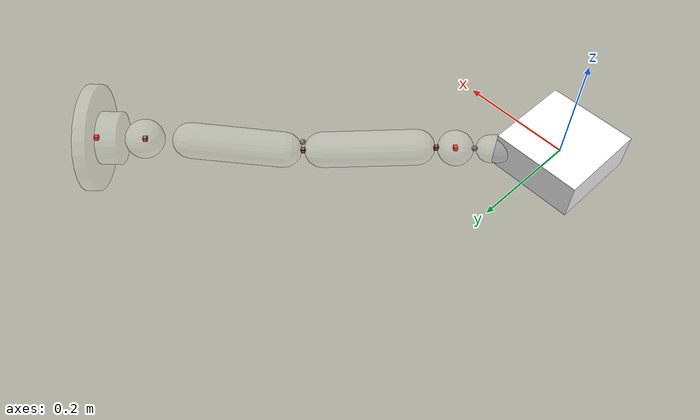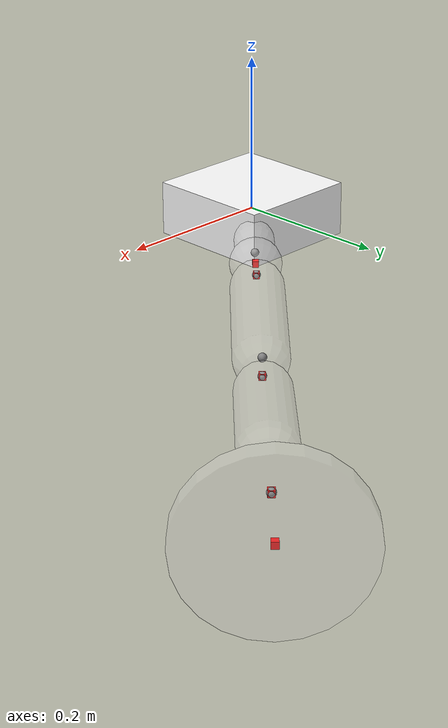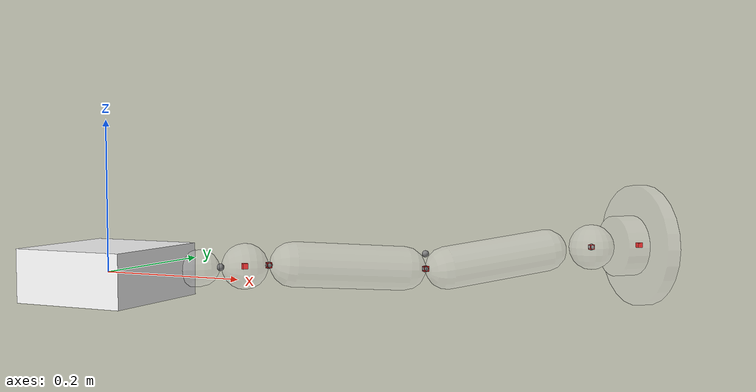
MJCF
<mujoco>
    <worldbody>
        <geom name="ROMERIN" type="box" size="0.08 0.0825 0.035" rgba="1 1 1 1"/>
        <body name="THOR" pos="0.08 0.0825 0" euler="0 0 45.8814">
            <geom name="colision_b0" type="capsule" size="0.025 0.008" euler="0 90 0" rgba="1 1 1 0.2"/>
            <body name="link_1" pos="0.069 0 0" >
                <inertial pos="0 0 0" mass="0.212" diaginertia="1 1 1"/>
                <geom name="colision_b1" type="sphere" size="0.032" euler="0 90 0" rgba="1 1 1 0.2"/>
                <site name="mass_b1" type="box" size="0.0038 0.0038 0.0038"  euler="0 90 0" rgba="1 0 0 1"/>
                <site name="sensor_b1" pos="-0.034 0 0"/>
                <joint name="Q1" type="hinge" pos="-0.034 0 0" axis="0 0 1" limited="true" range="-110 110" stiffness="1" damping="1" frictionloss="0.5"/>
                <body name="link_2" pos="0.034 0 0">
                    <inertial pos="0.118 0 -0.00745" mass="0.360" diaginertia="1 1 1"/>
                    <geom name="colision_b2" type="capsule" size="0.032" fromto="0.034 0 0 0.202 0 -0.0129" rgba="1 1 1 0.2"/>
                    <site name="sensor_b2" pos="0 0 0"/>
                    <site name="mass_b2" type="box" size="0.0038 0.0038 0.0038"  euler="0 90 0" rgba="1 0 0 1"/>
                    <joint name="Q2" type="hinge" pos="0 0 0" axis="0 -1 0" limited="true" range="-110 110"  stiffness="1" damping="1" frictionloss="0.5"/>
                    <body name="link_3" pos="0.236 0 -0.0149">
                        <inertial pos="0.14 0 0.011" mass="0.535" diaginertia="1 1 1"/>
                        <geom name="colision_b3" type="capsule" size="0.032" fromto="0.034 0 0 0.199 0 0.02" rgba="1 1 1 0.2"/>
                        <site name="sensor_b3" pos="0 0 0"/>
                        <site name="mass_b3" type="box" size="0.0038 0.0038 0.0038"  euler="0 90 0" rgba="1 0 0 1"/>
                        <joint name="Q3" type="hinge" pos="0 0 0" axis="0 1 -0" limited="true" range="-35 170"  stiffness="1" damping="1" frictionloss="0.5"/>
                        <body name="link_4" pos="0.28 0 0.022">
                            <inertial pos="0 0 0" mass="0.205" diaginertia="1 1 1"/>
                            <geom name="colision_b4" type="sphere" size="0.035" rgba="1 1 1 0.2"/>
                            <site name="sensor_b4" pos="-0.28 0 0"/>
                            <site name="mass_b4" type="box" size="0.0038 0.0038 0.0038"  euler="0 90 0" rgba="1 0 0 1"/>
                            <joint name="Q4" type="hinge" pos="-0.28 0 0" axis="-1 0 0" limited="true" range="-180 180"  stiffness="1" damping="1" frictionloss="0.5"/>
                            <body name="link_5" pos="0 0 0">
                                <inertial pos="0 0 0" mass="0.125" diaginertia="1 1 1"/>
                                <geom name="nolink_5" type="sphere" size="0.001" euler="0 90 0" rgba="1 1 1 0.2"/>
                                <site name="sensor_b5" pos="0 0 0"/>
                                <site name="mass_b5" type="box" size="0.0038 0.0038 0.0038"  euler="0 90 0" rgba="1 0 0 1"/>
                                <joint name="Q5" type="hinge" pos="0 0 0" axis="0 -1 0" limited="true" range="-180 180"  stiffness="1" damping="1" frictionloss="0.5"/>
                                <body name="link_6" pos="0.087 0 0">
                                    <inertial pos="0 0 0" mass="0.287" diaginertia="1 1 1"/>
                                    <geom name="colision_b6_up" type="cylinder" size="0.047 0.0185" pos="-0.0295 0 0" euler="0 90 0" rgba="1 1 1 0.2"/>
                                    <geom name="colision_b6_contact" type="cylinder" size="0.095 0.011" euler="0 90 0" rgba="1 1 1 0.2"/>

                                    <site name="sensor_b6" pos="-0.087 0 0"/>
                                    <site name="mass_b6" type="box" size="0.0038 0.0038 0.0038"  euler="0 90 0" rgba="1 0 0 1"/>

                                    <joint name="Q6" type="hinge" pos="-0.087 0 0" axis="1 0 -0" limited="true" range="-180 180"  stiffness="1" damping="1" frictionloss="0.5"/>
                                    <body name="adhesion_contact" pos="0.011 0 0">
                                        <geom name="contact" type="cylinder" size="0.09 0.0005" pos="0.0005 0 0" euler="0 90 0" rgba="5 5 5 0"/>

                                    </body>
                                </body>
                            </body>
                        </body>
                    </body>
                </body>
            </body>
        </body>
    </worldbody>
</mujoco>
